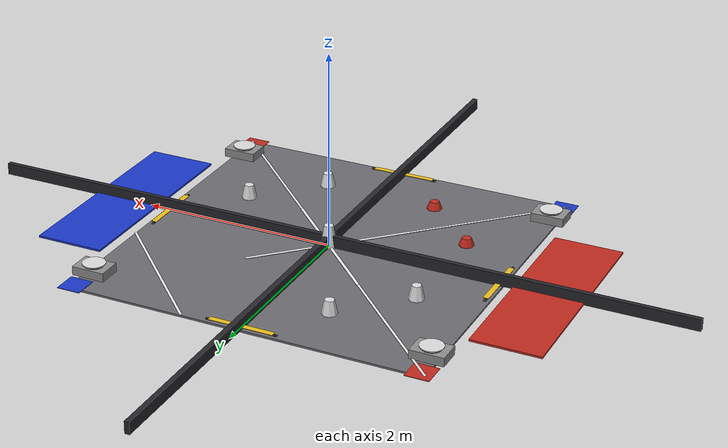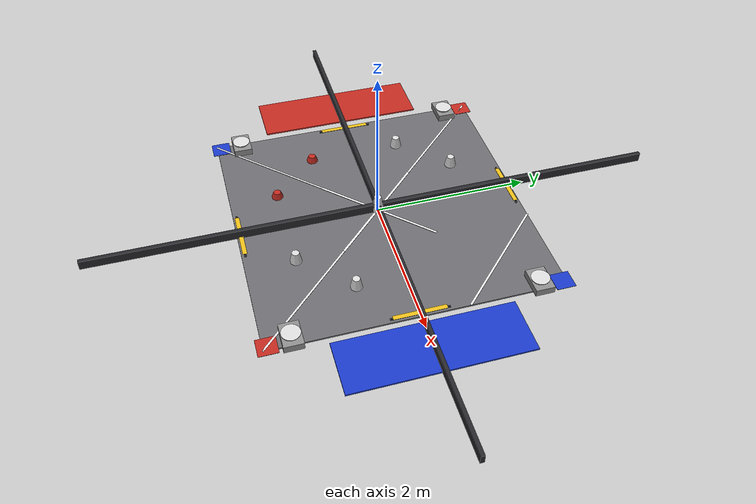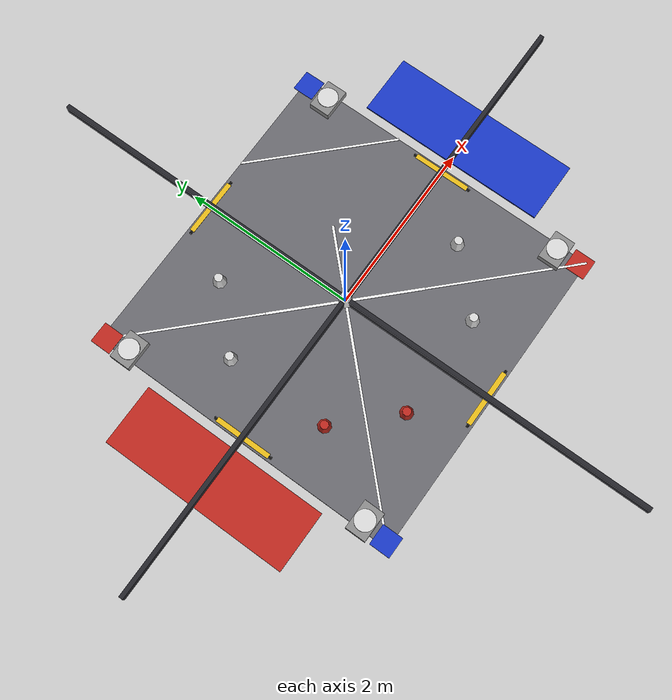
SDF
<sdf version="1.7">
 <world name="override">
  <scene>
   <ambient>0.45 0.45 0.5 1</ambient>
   <background>0.2 0.2 0.25 1</background>
   <shadows>true</shadows>
   <sky><clouds><speed>1</speed></clouds></sky>
  </scene>
  <light name="sun" type="directional">
   <pose>0 0 3 0 0 0</pose>
   <diffuse>0.9 0.9 0.9 1</diffuse>
   <specular>0.2 0.2 0.2 1</specular>
   <direction>-0.5 0.1 -1</direction>
  </light>
  <include><name>override-field</name><uri>model://override-field</uri></include>
  <include><name>goal_center</name><uri>model://goal-center</uri></include>
  <include><name>goal_neutral_1</name><uri>model://goal-neutral</uri><pose>-0.6 1.2 0 0 0 0</pose></include>
  <include><name>goal_neutral_2</name><uri>model://goal-neutral</uri><pose>-1.2 0.6 0 0 0 0</pose></include>
  <include><name>goal_neutral_3</name><uri>model://goal-neutral</uri><pose>1.2 -0.6 0 0 0 0</pose></include>
  <include><name>goal_neutral_4</name><uri>model://goal-neutral</uri><pose>0.6 -1.2 0 0 0 0</pose></include>
  <include><name>goal_red_1</name><uri>model://goal-alliance-red</uri><pose>-1.2 -0.6 0 0 0 0</pose></include>
  <include><name>goal_red_2</name><uri>model://goal-alliance-red</uri><pose>-0.6 -1.2 0 0 0 0</pose></include>
  <include><name>toggle_1</name><uri>model://toggle</uri><pose>0 1.78 0 0 0 0</pose></include>
  <include><name>toggle_2</name><uri>model://toggle</uri><pose>1.78 0 0 0 0 1.5708</pose></include>
  <include><name>toggle_3</name><uri>model://toggle</uri><pose>0 -1.78 0 0 0 0</pose></include>
  <include><name>toggle_4</name><uri>model://toggle</uri><pose>-1.78 0 0 0 0 1.5708</pose></include>
  <include><name>loader_1</name><uri>model://loader</uri><pose>-1.74 1.49 0 0 0 0</pose></include>
  <include><name>loader_2</name><uri>model://loader</uri><pose>-1.74 -1.49 0 0 0 0</pose></include>
  <include><name>loader_3</name><uri>model://loader</uri><pose>1.74 1.49 0 0 0 0</pose></include>
  <include><name>loader_4</name><uri>model://loader</uri><pose>1.74 -1.49 0 0 0 0</pose></include>
 </world>
</sdf>

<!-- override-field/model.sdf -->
<sdf version="1.7">
  <model name="override-field">
    <static>true</static>
    <link name="body">
      <pose>0 0 0 0 0 0</pose>
            <visual name="v_0_0">
        <pose>0 0 -0.01 0.0 0.0 0.0</pose>
        <geometry><box><size>3.6576 3.6576 0.02</size></box></geometry>
        <material>
        <ambient>0.42 0.42 0.44 1</ambient>
        <diffuse>0.42 0.42 0.44 1</diffuse>
        <specular>0.1 0.1 0.1 1.0</specular>
        <emissive>0 0 0 1</emissive>
      </material>
      </visual>
      <collision name="c_0_0">
        <pose>0 0 -0.01 0.0 0.0 0.0</pose>
        <geometry><box><size>3.6576 3.6576 0.02</size></box></geometry>
        <surface><friction><ode><mu>0.8</mu><mu2>0.8</mu2></ode></friction></surface>
      </collision>

      <visual name="v_-1.8538_0">
        <pose>-1.8538 0 0.06 0.0 0.0 0.0</pose>
        <geometry><box><size>3.7576 0.05 0.12</size></box></geometry>
        <material>
        <ambient>0.15 0.15 0.17 1</ambient>
        <diffuse>0.15 0.15 0.17 1</diffuse>
        <specular>0.1 0.1 0.1 1.0</specular>
        <emissive>0 0 0 1</emissive>
      </material>
      </visual>
      <collision name="c_-1.8538_0">
        <pose>-1.8538 0 0.06 0.0 0.0 0.0</pose>
        <geometry><box><size>3.7576 0.05 0.12</size></box></geometry>
        <surface><friction><ode><mu>0.8</mu><mu2>0.8</mu2></ode></friction></surface>
      </collision>

      <visual name="v_0_-1.8538">
        <pose>0 -1.8538 0.06 0.0 0.0 0.0</pose>
        <geometry><box><size>0.05 3.7576 0.12</size></box></geometry>
        <material>
        <ambient>0.15 0.15 0.17 1</ambient>
        <diffuse>0.15 0.15 0.17 1</diffuse>
        <specular>0.1 0.1 0.1 1.0</specular>
        <emissive>0 0 0 1</emissive>
      </material>
      </visual>
      <collision name="c_0_-1.8538">
        <pose>0 -1.8538 0.06 0.0 0.0 0.0</pose>
        <geometry><box><size>0.05 3.7576 0.12</size></box></geometry>
        <surface><friction><ode><mu>0.8</mu><mu2>0.8</mu2></ode></friction></surface>
      </collision>

      <visual name="v_1.8538_0">
        <pose>1.8538 0 0.06 0.0 0.0 0.0</pose>
        <geometry><box><size>3.7576 0.05 0.12</size></box></geometry>
        <material>
        <ambient>0.15 0.15 0.17 1</ambient>
        <diffuse>0.15 0.15 0.17 1</diffuse>
        <specular>0.1 0.1 0.1 1.0</specular>
        <emissive>0 0 0 1</emissive>
      </material>
      </visual>
      <collision name="c_1.8538_0">
        <pose>1.8538 0 0.06 0.0 0.0 0.0</pose>
        <geometry><box><size>3.7576 0.05 0.12</size></box></geometry>
        <surface><friction><ode><mu>0.8</mu><mu2>0.8</mu2></ode></friction></surface>
      </collision>

      <visual name="v_0_1.8538">
        <pose>0 1.8538 0.06 0.0 0.0 0.0</pose>
        <geometry><box><size>0.05 3.7576 0.12</size></box></geometry>
        <material>
        <ambient>0.15 0.15 0.17 1</ambient>
        <diffuse>0.15 0.15 0.17 1</diffuse>
        <specular>0.1 0.1 0.1 1.0</specular>
        <emissive>0 0 0 1</emissive>
      </material>
      </visual>
      <collision name="c_0_1.8538">
        <pose>0 1.8538 0.06 0.0 0.0 0.0</pose>
        <geometry><box><size>0.05 3.7576 0.12</size></box></geometry>
        <surface><friction><ode><mu>0.8</mu><mu2>0.8</mu2></ode></friction></surface>
      </collision>

      <visual name="v_-2.2788_0">
        <pose>-2.2788 0 0.01 0.0 0.0 0.0</pose>
        <geometry><box><size>0.7 2.2 0.02</size></box></geometry>
        <material>
        <ambient>0.75 0.16 0.12 1</ambient>
        <diffuse>0.75 0.16 0.12 1</diffuse>
        <specular>0.1 0.1 0.1 1.0</specular>
        <emissive>0 0 0 1</emissive>
      </material>
      </visual>
      <collision name="c_-2.2788_0">
        <pose>-2.2788 0 0.01 0.0 0.0 0.0</pose>
        <geometry><box><size>0.7 2.2 0.02</size></box></geometry>
        <surface><friction><ode><mu>0.8</mu><mu2>0.8</mu2></ode></friction></surface>
      </collision>

      <visual name="v_2.2788_0">
        <pose>2.2788 0 0.01 0.0 0.0 0.0</pose>
        <geometry><box><size>0.7 2.2 0.02</size></box></geometry>
        <material>
        <ambient>0.1 0.22 0.78 1</ambient>
        <diffuse>0.1 0.22 0.78 1</diffuse>
        <specular>0.1 0.1 0.1 1.0</specular>
        <emissive>0 0 0 1</emissive>
      </material>
      </visual>
      <collision name="c_2.2788_0">
        <pose>2.2788 0 0.01 0.0 0.0 0.0</pose>
        <geometry><box><size>0.7 2.2 0.02</size></box></geometry>
        <surface><friction><ode><mu>0.8</mu><mu2>0.8</mu2></ode></friction></surface>
      </collision>

      <visual name="tape_0.3_0.3">
        <pose>0.3 0.3 0.005 0 0 0.7854</pose>
        <geometry><box><size>0.848528137423857 0.03 0.005</size></box></geometry>
        <material>
        <ambient>0.96 0.96 0.96 1</ambient>
        <diffuse>0.96 0.96 0.96 1</diffuse>
        <specular>0.1 0.1 0.1 1.0</specular>
        <emissive>0.05 0.05 0.05 1</emissive>
      </material>
      </visual>

      <visual name="tape_-0.3_0.3">
        <pose>-0.3 0.3 0.005 0 0 -0.7854</pose>
        <geometry><box><size>0.848528137423857 0.03 0.005</size></box></geometry>
        <material>
        <ambient>0.96 0.96 0.96 1</ambient>
        <diffuse>0.96 0.96 0.96 1</diffuse>
        <specular>0.1 0.1 0.1 1.0</specular>
        <emissive>0.05 0.05 0.05 1</emissive>
      </material>
      </visual>

      <visual name="tape_-0.3_-0.3">
        <pose>-0.3 -0.3 0.005 0 0 0.7854</pose>
        <geometry><box><size>0.848528137423857 0.03 0.005</size></box></geometry>
        <material>
        <ambient>0.96 0.96 0.96 1</ambient>
        <diffuse>0.96 0.96 0.96 1</diffuse>
        <specular>0.1 0.1 0.1 1.0</specular>
        <emissive>0.05 0.05 0.05 1</emissive>
      </material>
      </visual>

      <visual name="tape_0.3_-0.3">
        <pose>0.3 -0.3 0.005 0 0 -0.7854</pose>
        <geometry><box><size>0.848528137423857 0.03 0.005</size></box></geometry>
        <material>
        <ambient>0.96 0.96 0.96 1</ambient>
        <diffuse>0.96 0.96 0.96 1</diffuse>
        <specular>0.1 0.1 0.1 1.0</specular>
        <emissive>0.05 0.05 0.05 1</emissive>
      </material>
      </visual>

      <visual name="tape_-1.2144_1.2144">
        <pose>-1.2144 1.2144 0.005 0 0 -0.7854</pose>
        <geometry><box><size>1.7377856254440596 0.025 0.005</size></box></geometry>
        <material>
        <ambient>0.96 0.96 0.96 1</ambient>
        <diffuse>0.96 0.96 0.96 1</diffuse>
        <specular>0.1 0.1 0.1 1.0</specular>
        <emissive>0.05 0.05 0.05 1</emissive>
      </material>
      </visual>

      <visual name="tape_1.2144_1.2144">
        <pose>1.2144 1.2144 0.005 0 0 2.3562</pose>
        <geometry><box><size>1.7377856254440596 0.025 0.005</size></box></geometry>
        <material>
        <ambient>0.96 0.96 0.96 1</ambient>
        <diffuse>0.96 0.96 0.96 1</diffuse>
        <specular>0.1 0.1 0.1 1.0</specular>
        <emissive>0.05 0.05 0.05 1</emissive>
      </material>
      </visual>

      <visual name="tape_-1.2144_-1.2144">
        <pose>-1.2144 -1.2144 0.005 0 0 0.7854</pose>
        <geometry><box><size>1.7377856254440596 0.025 0.005</size></box></geometry>
        <material>
        <ambient>0.96 0.96 0.96 1</ambient>
        <diffuse>0.96 0.96 0.96 1</diffuse>
        <specular>0.1 0.1 0.1 1.0</specular>
        <emissive>0.05 0.05 0.05 1</emissive>
      </material>
      </visual>

      <visual name="tape_1.2144_-1.2144">
        <pose>1.2144 -1.2144 0.005 0 0 2.3562</pose>
        <geometry><box><size>1.7377856254440596 0.025 0.005</size></box></geometry>
        <material>
        <ambient>0.96 0.96 0.96 1</ambient>
        <diffuse>0.96 0.96 0.96 1</diffuse>
        <specular>0.1 0.1 0.1 1.0</specular>
        <emissive>0.05 0.05 0.05 1</emissive>
      </material>
      </visual>

      <visual name="tape_1.773936_1.773936">
        <pose>1.773936 1.773936 0.005 0 0 0.0</pose>
        <geometry><box><size>0.24 0.24 0.005</size></box></geometry>
        <material>
        <ambient>0.1 0.22 0.78 1</ambient>
        <diffuse>0.1 0.22 0.78 1</diffuse>
        <specular>0.1 0.1 0.1 1.0</specular>
        <emissive>0 0 0 1</emissive>
      </material>
      </visual>

      <visual name="tape_1.773936_-1.773936">
        <pose>1.773936 -1.773936 0.005 0 0 0.0</pose>
        <geometry><box><size>0.24 0.24 0.005</size></box></geometry>
        <material>
        <ambient>0.75 0.16 0.12 1</ambient>
        <diffuse>0.75 0.16 0.12 1</diffuse>
        <specular>0.1 0.1 0.1 1.0</specular>
        <emissive>0 0 0 1</emissive>
      </material>
      </visual>

      <visual name="tape_-1.773936_-1.773936">
        <pose>-1.773936 -1.773936 0.005 0 0 0.0</pose>
        <geometry><box><size>0.24 0.24 0.005</size></box></geometry>
        <material>
        <ambient>0.1 0.22 0.78 1</ambient>
        <diffuse>0.1 0.22 0.78 1</diffuse>
        <specular>0.1 0.1 0.1 1.0</specular>
        <emissive>0 0 0 1</emissive>
      </material>
      </visual>

      <visual name="tape_-1.773936_1.773936">
        <pose>-1.773936 1.773936 0.005 0 0 0.0</pose>
        <geometry><box><size>0.24 0.24 0.005</size></box></geometry>
        <material>
        <ambient>0.75 0.16 0.12 1</ambient>
        <diffuse>0.75 0.16 0.12 1</diffuse>
        <specular>0.1 0.1 0.1 1.0</specular>
        <emissive>0 0 0 1</emissive>
      </material>
      </visual>

    </link>
  </model>
</sdf>

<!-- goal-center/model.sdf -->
<sdf version="1.7">
  <model name="goal-center">
    <static>true</static>
    <link name="body">
      <pose>0 0 0 0 0 0</pose>
      <visual name="visual">
        <geometry>
          <mesh>
            <uri>model://goal-center/meshes/goal.stl</uri>
          </mesh>
        </geometry>
        <material>
        <ambient>0.86 0.86 0.86 1</ambient>
        <diffuse>0.86 0.86 0.86 1</diffuse>
        <specular>0.1 0.1 0.1 1.0</specular>
        <emissive>0 0 0 1</emissive>
      </material>
      </visual>
      <visual name="receptacle">
        <pose>0 0 0.2127 0 0 0</pose>
        <geometry>
          <cylinder>
            <radius>0.030</radius>
            <length>0.008</length>
          </cylinder>
        </geometry>
        <material>
        <ambient>0.08 0.08 0.08 1</ambient>
        <diffuse>0.08 0.08 0.08 1</diffuse>
        <specular>0.1 0.1 0.1 1.0</specular>
        <emissive>0 0 0 1</emissive>
      </material>
      </visual>
      <collision name="collision">
        <pose>0 0 0.11135 0 0 0</pose>
        <geometry>
          <cylinder>
            <radius>0.0715</radius>
            <length>0.2227</length>
          </cylinder>
        </geometry>
        <surface>
          <friction>
            <ode>
              <mu>0.8</mu>
              <mu2>0.8</mu2>
            </ode>
          </friction>
        </surface>
      </collision>
    </link>
  </model>
</sdf>

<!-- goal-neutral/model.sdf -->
<sdf version="1.7">
  <model name="goal-neutral">
    <static>true</static>
    <link name="body">
      <pose>0 0 0 0 0 0</pose>
      <visual name="visual">
        <geometry>
          <mesh>
            <uri>model://goal-neutral/meshes/goal.stl</uri>
          </mesh>
        </geometry>
        <material>
        <ambient>0.86 0.86 0.86 1</ambient>
        <diffuse>0.86 0.86 0.86 1</diffuse>
        <specular>0.1 0.1 0.1 1.0</specular>
        <emissive>0 0 0 1</emissive>
      </material>
      </visual>
      <visual name="receptacle">
        <pose>0 0 0.13649999999999998 0 0 0</pose>
        <geometry>
          <cylinder>
            <radius>0.030</radius>
            <length>0.008</length>
          </cylinder>
        </geometry>
        <material>
        <ambient>0.08 0.08 0.08 1</ambient>
        <diffuse>0.08 0.08 0.08 1</diffuse>
        <specular>0.1 0.1 0.1 1.0</specular>
        <emissive>0 0 0 1</emissive>
      </material>
      </visual>
      <collision name="collision">
        <pose>0 0 0.07325 0 0 0</pose>
        <geometry>
          <cylinder>
            <radius>0.0715</radius>
            <length>0.1465</length>
          </cylinder>
        </geometry>
        <surface>
          <friction>
            <ode>
              <mu>0.8</mu>
              <mu2>0.8</mu2>
            </ode>
          </friction>
        </surface>
      </collision>
    </link>
  </model>
</sdf>

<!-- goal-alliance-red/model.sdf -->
<sdf version="1.7">
  <model name="goal-alliance-red">
    <static>true</static>
    <link name="body">
      <pose>0 0 0 0 0 0</pose>
      <visual name="visual">
        <geometry>
          <mesh>
            <uri>model://goal-alliance-red/meshes/goal.stl</uri>
          </mesh>
        </geometry>
        <material>
        <ambient>0.75 0.16 0.12 1</ambient>
        <diffuse>0.75 0.16 0.12 1</diffuse>
        <specular>0.1 0.1 0.1 1.0</specular>
        <emissive>0 0 0 1</emissive>
      </material>
      </visual>
      <visual name="receptacle">
        <pose>0 0 0.07250000000000001 0 0 0</pose>
        <geometry>
          <cylinder>
            <radius>0.030</radius>
            <length>0.008</length>
          </cylinder>
        </geometry>
        <material>
        <ambient>0.08 0.08 0.08 1</ambient>
        <diffuse>0.08 0.08 0.08 1</diffuse>
        <specular>0.1 0.1 0.1 1.0</specular>
        <emissive>0 0 0 1</emissive>
      </material>
      </visual>
      <collision name="collision">
        <pose>0 0 0.04125 0 0 0</pose>
        <geometry>
          <cylinder>
            <radius>0.0715</radius>
            <length>0.0825</length>
          </cylinder>
        </geometry>
        <surface>
          <friction>
            <ode>
              <mu>0.8</mu>
              <mu2>0.8</mu2>
            </ode>
          </friction>
        </surface>
      </collision>
    </link>
  </model>
</sdf>

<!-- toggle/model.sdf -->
<sdf version="1.7">
  <model name="toggle">
    <static>true</static>
    <link name="body">
      <pose>0 0 0 0 0 0</pose>
      <visual name="face_yellow">
        <pose>0 0 0.01507 0 0 0</pose>
        <geometry>
          <box><size>0.656 0.0562 0.004</size></box>
        </geometry>
        <material>
        <ambient>0.92 0.74 0.1 1</ambient>
        <diffuse>0.92 0.74 0.1 1</diffuse>
        <specular>0.1 0.1 0.1 1.0</specular>
        <emissive>0 0 0 1</emissive>
      </material>
      </visual>
      <visual name="face_blue">
        <pose>0 -0.01305 -0.007535 0.5236 0 0</pose>
        <geometry>
          <box><size>0.656 0.0562 0.004</size></box>
        </geometry>
        <material>
        <ambient>0.1 0.22 0.78 1</ambient>
        <diffuse>0.1 0.22 0.78 1</diffuse>
        <specular>0.1 0.1 0.1 1.0</specular>
        <emissive>0 0 0 1</emissive>
      </material>
      </visual>
      <visual name="face_red">
        <pose>0 0.01305 -0.007535 2.618 0 0</pose>
        <geometry>
          <box><size>0.656 0.0562 0.004</size></box>
        </geometry>
        <material>
        <ambient>0.75 0.16 0.12 1</ambient>
        <diffuse>0.75 0.16 0.12 1</diffuse>
        <specular>0.1 0.1 0.1 1.0</specular>
        <emissive>0 0 0 1</emissive>
      </material>
      </visual>
      <visual name="shaft_l">
        <pose>-0.328 0 0 0 1.5708 0</pose>
        <geometry>
          <cylinder><radius>0.015</radius><length>0.07</length></cylinder>
        </geometry>
        <material>
        <ambient>0.08 0.08 0.08 1</ambient>
        <diffuse>0.08 0.08 0.08 1</diffuse>
        <specular>0.1 0.1 0.1 1.0</specular>
        <emissive>0 0 0 1</emissive>
      </material>
      </visual>
      <visual name="shaft_r">
        <pose>0.328 0 0 0 1.5708 0</pose>
        <geometry>
          <cylinder><radius>0.015</radius><length>0.07</length></cylinder>
        </geometry>
        <material>
        <ambient>0.08 0.08 0.08 1</ambient>
        <diffuse>0.08 0.08 0.08 1</diffuse>
        <specular>0.1 0.1 0.1 1.0</specular>
        <emissive>0 0 0 1</emissive>
      </material>
      </visual>
      <collision name="collision">
        <pose>0 0 -0.0075 0 0 0</pose>
        <geometry>
          <box><size>0.656 0.06 0.05</size></box>
        </geometry>
        <surface>
          <friction>
            <ode><mu>0.5</mu><mu2>0.5</mu2></ode>
          </friction>
        </surface>
      </collision>
    </link>
  </model>
</sdf>

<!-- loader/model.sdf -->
<sdf version="1.7">
  <model name="loader">
    <static>true</static>
    <link name="body">
      <pose>0 0 0 0 0 0</pose>
      <visual name="platform">
        <pose>0 0 0.045 0 0 0</pose>
        <geometry>
          <box><size>0.34 0.24 0.09</size></box>
        </geometry>
        <material>
        <ambient>0.55 0.55 0.55 1</ambient>
        <diffuse>0.55 0.55 0.55 1</diffuse>
        <specular>0.1 0.1 0.1 1.0</specular>
        <emissive>0 0 0 1</emissive>
      </material>
      </visual>
      <visual name="opening">
        <pose>0 0 0.1 0 0 0</pose>
        <geometry>
          <cylinder><radius>0.10</radius><length>0.02</length></cylinder>
        </geometry>
        <material>
        <ambient>0.08 0.08 0.08 1</ambient>
        <diffuse>0.08 0.08 0.08 1</diffuse>
        <specular>0.1 0.1 0.1 1.0</specular>
        <emissive>0 0 0 1</emissive>
      </material>
      </visual>
      <visual name="rim">
        <pose>0 0 0.112 0 0 0</pose>
        <geometry>
          <cylinder><radius>0.115</radius><length>0.008</length></cylinder>
        </geometry>
        <material>
        <ambient>0.86 0.86 0.86 1</ambient>
        <diffuse>0.86 0.86 0.86 1</diffuse>
        <specular>0.1 0.1 0.1 1.0</specular>
        <emissive>0 0 0 1</emissive>
      </material>
      </visual>
      <collision name="collision">
        <pose>0 0 0.045 0 0 0</pose>
        <geometry>
          <box><size>0.34 0.24 0.09</size></box>
        </geometry>
        <surface>
          <friction>
            <ode><mu>0.7</mu><mu2>0.7</mu2></ode>
          </friction>
        </surface>
      </collision>
    </link>
  </model>
</sdf>
